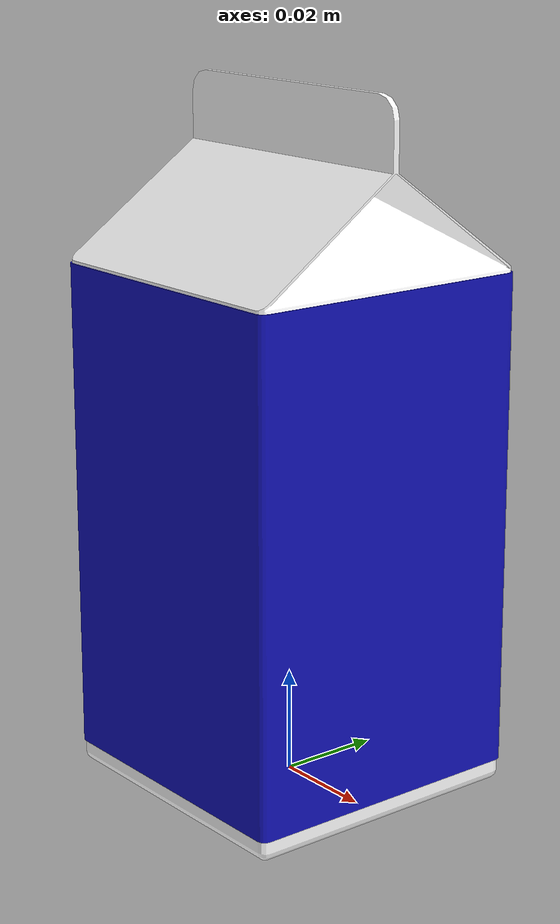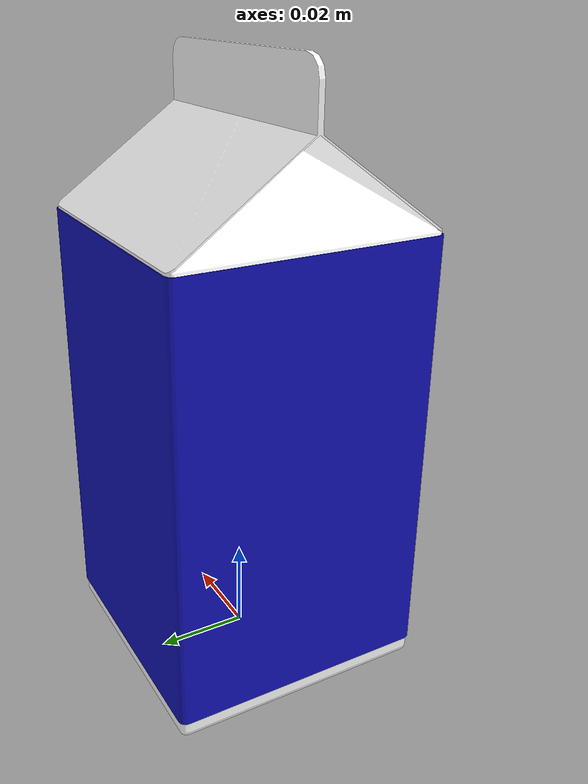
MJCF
<mujoco model="milk_carton">
  <compiler angle="radian" autolimits="true" meshdir="assets" texturedir="assets"/>

  <asset>

    <mesh name="carton_body"  file="milk_carton_body.stl"  scale="0.000821 0.000821 0.000821"/>
    <mesh name="catton_label" file="milk_carton_label.stl" scale="0.000821 0.000821 0.000821"/>

    <texture name="metal_tex" type="2d" file="metal_material.png"/>
    <material name="carton_body_mat"  rgba="1 1 1 1" specular="0.8" shininess="0.5" reflectance="0.3"/>
    <material name="catton_label_mat" rgba="0.07 0.07 0.72 1" specular="0.1" shininess="0.1" reflectance="0.0"/>
  </asset>

  <worldbody>
    <body name="milk_carton">
      <freejoint name="can_joint"/>
      <inertial mass="0.39" pos="0 0 0.0575" diaginertia="5.8e-4 5.8e-4 2.1e-4"/>
      <geom name="carton_body"  mesh="carton_body"  type="mesh" material="carton_body_mat"/>
      <geom name="catton_label" mesh="catton_label" type="mesh" material="catton_label_mat" contype="0" conaffinity="0"/>
    </body>
  </worldbody>
</mujoco>
